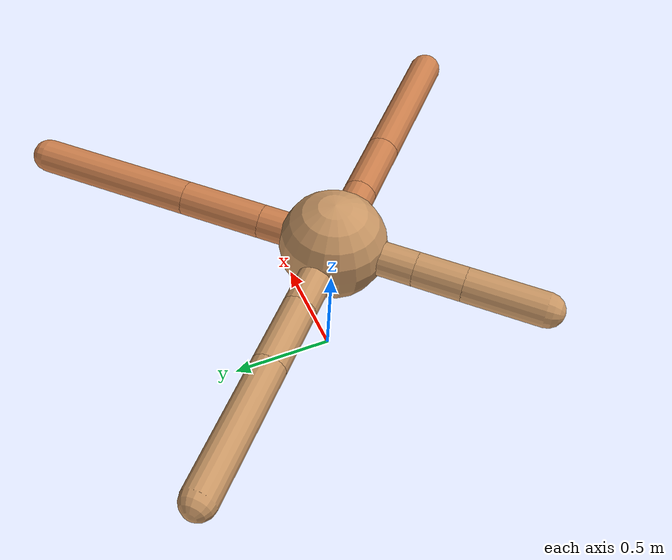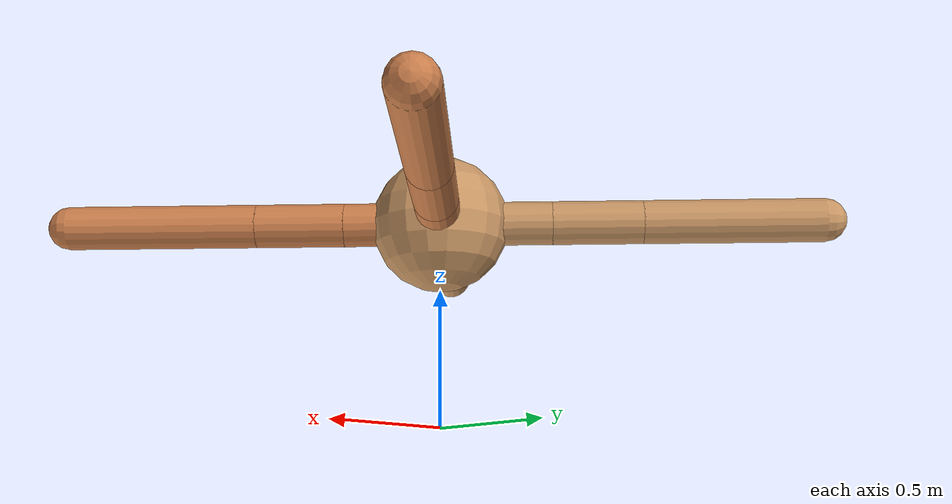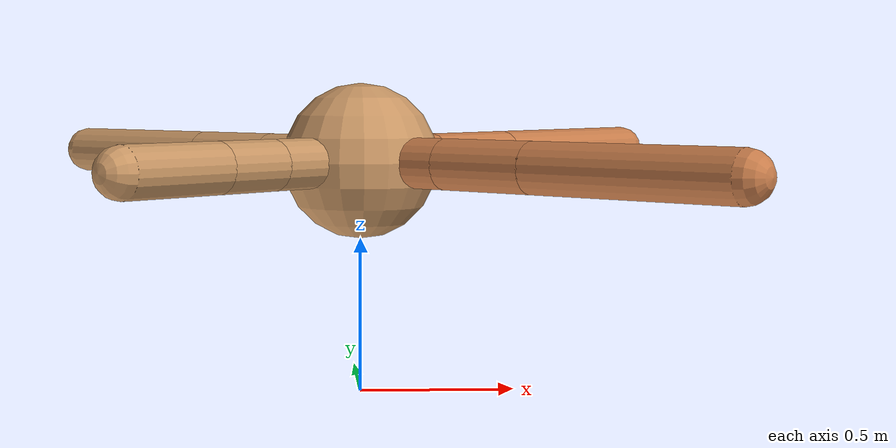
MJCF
<mujoco model="ant">
  <compiler angle="degree" coordinate="local" inertiafromgeom="true" />
  <option integrator="RK4" timestep="0.01" />
  <custom>
    <numeric data="0.0 0.0 0.55 1.0 0.0 0.0 0.0 0.0 1.0 0.0 -1.0 0.0 -1.0 0.0 1.0" name="init_qpos" />
  </custom>
  <default>
    <joint armature="1" damping="1" limited="true" />
    <geom conaffinity="0" condim="3" density="5.0" friction="1.5 0.1 0.1" margin="0.01" rgba="0.8 0.6 0.4 1" />
  </default>
  <worldbody>
    <body name="torso" pos="0 0 0.75">
      <geom name="torso_geom" pos="0 0 0" size="0.25" type="sphere" />

      <body name="front_left_leg" pos="0 0 0">
        <geom fromto="0.0 0.0 0.0 0.25068191985218163 0.25068191985218163 0.0" name="aux_1_geom" size="0.08" type="capsule" rgba=".8 .5 .3 1" />
        <body name="aux_1" pos="0.25068191985218163 0.25068191985218163 0.0">
          <joint axis="0 0 1" name="hip_1" pos="0.0 0.0 0.0" range="-40 40" type="hinge" />
          <geom fromto="0.0 0.0 0.0 0.27780339051587555 0.27780339051587555 0.0" name="left_leg_geom" size="0.08" type="capsule" rgba=".8 .5 .3 1" />
          <body pos="0.27780339051587555 0.27780339051587555 0.0" name="front_left_foot">
            <joint axis="-1 1 0" name="ankle_1" pos="0.0 0.0 0.0" range="30 100" type="hinge" />
            <geom fromto="0.0 0.0 0.0 0.5365092340831278 0.5365092340831278 0.0" name="left_ankle_geom" size="0.08" type="capsule" rgba=".8 .5 .3 1" />
          </body>
        </body>
      </body>
      <body name="front_right_leg" pos="0 0 0">
        <geom fromto="0.0 0.0 0.0 -0.2902775230381037 0.2902775230381037 0.0" name="aux_2_geom" size="0.08" type="capsule" />
        <body name="aux_2" pos="-0.2902775230381037 0.2902775230381037 0.0">
          <joint axis="0 0 1" name="hip_2" pos="0.0 0.0 0.0" range="-40 40" type="hinge" />
          <geom fromto="0.0 0.0 0.0 -0.2335580681868696 0.2335580681868696 0.0" name="right_leg_geom" size="0.08" type="capsule" />
          <body pos="-0.2335580681868696 0.2335580681868696 0.0" name="front_right_foot">
            <joint axis="1 1 0" name="ankle_2" pos="0.0 0.0 0.0" range="-100 -30" type="hinge" />
            <geom fromto="0.0 0.0 0.0 -0.46443384187573244 0.46443384187573244 0.0" name="right_ankle_geom" size="0.08" type="capsule" />
          </body>
        </body>
      </body>
      <body name="left_back_leg" pos="0 0 0">
        <geom fromto="0.0 0.0 0.0 -0.27871187616652815 -0.27871187616652815 0.0" name="aux_3_geom" size="0.08" type="capsule" />
        <body name="aux_3" pos="-0.27871187616652815 -0.27871187616652815 0.0">
          <joint axis="0 0 1" name="hip_3" pos="0.0 0.0 0.0" range="-40 40" type="hinge" />
          <geom fromto="0.0 0.0 0.0 -0.16029861247549465 -0.16029861247549465 0.0" name="back_leg_geom" size="0.08" type="capsule" />
          <body pos="-0.16029861247549465 -0.16029861247549465 0.0" name="left_back_foot">
            <joint axis="-1 1 0" name="ankle_3" pos="0.0 0.0 0.0" range="-100 -30" type="hinge" />
            <geom fromto="0.0 0.0 0.0 -0.2602122467625891 -0.2602122467625891 0.0" name="third_ankle_geom" size="0.08" type="capsule" />
          </body>
        </body>
      </body>
      <body name="right_back_leg" pos="0 0 0">
        <geom fromto="0.0 0.0 0.0 0.24945078901654522 -0.24945078901654522 0.0" name="aux_4_geom" size="0.08" type="capsule" rgba=".8 .5 .3 1" />
        <body name="aux_4" pos="0.24945078901654522 -0.24945078901654522 0.0">
          <joint axis="0 0 1" name="hip_4" pos="0.0 0.0 0.0" range="-40 40" type="hinge" />
          <geom fromto="0.0 0.0 0.0 0.2306549691180992 -0.2306549691180992 0.0" name="rightback_leg_geom" size="0.08" type="capsule" rgba=".8 .5 .3 1" />
          <body pos="0.2306549691180992 -0.2306549691180992 0.0" name="right_back_foot">
            <joint axis="1 1 0" name="ankle_4" pos="0.0 0.0 0.0" range="30 100" type="hinge" />
            <geom fromto="0.0 0.0 0.0 0.49605633968300106 -0.49605633968300106 0.0" name="fourth_ankle_geom" size="0.08" type="capsule" rgba=".8 .5 .3 1" />
          </body>
        </body>
      </body>
    </body>
  </worldbody>
  <actuator>
    <motor ctrllimited="true" ctrlrange="-1.0 1.0" joint="hip_4" gear="150" />
    <motor ctrllimited="true" ctrlrange="-1.0 1.0" joint="ankle_4" gear="150" />
    <motor ctrllimited="true" ctrlrange="-1.0 1.0" joint="hip_1" gear="150" />
    <motor ctrllimited="true" ctrlrange="-1.0 1.0" joint="ankle_1" gear="150" />
    <motor ctrllimited="true" ctrlrange="-1.0 1.0" joint="hip_2" gear="150" />
    <motor ctrllimited="true" ctrlrange="-1.0 1.0" joint="ankle_2" gear="150" />
    <motor ctrllimited="true" ctrlrange="-1.0 1.0" joint="hip_3" gear="150" />
    <motor ctrllimited="true" ctrlrange="-1.0 1.0" joint="ankle_3" gear="150" />
  </actuator>
</mujoco>
